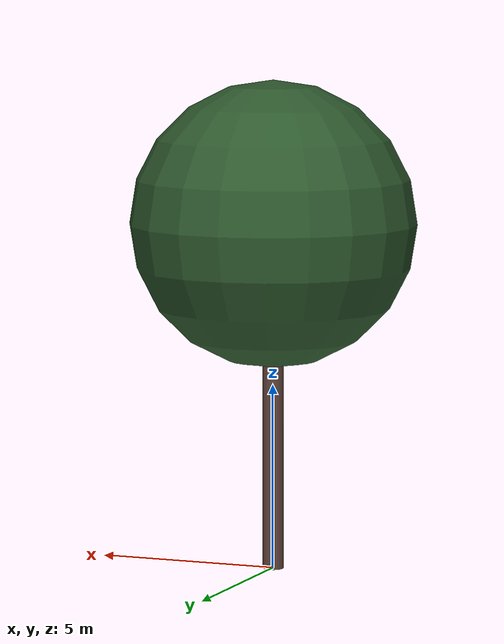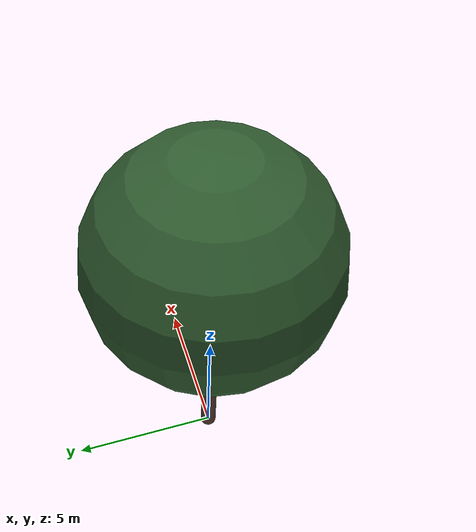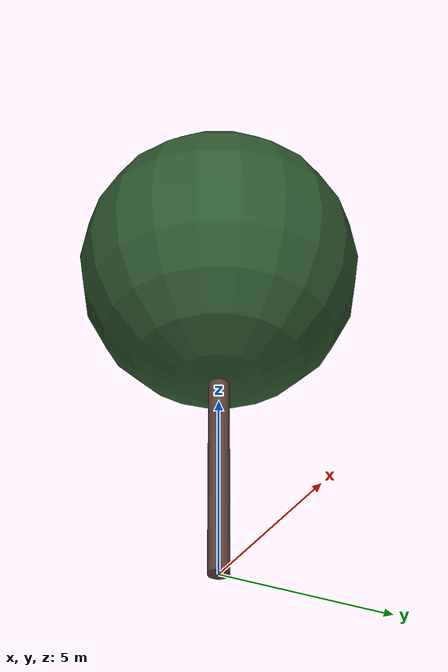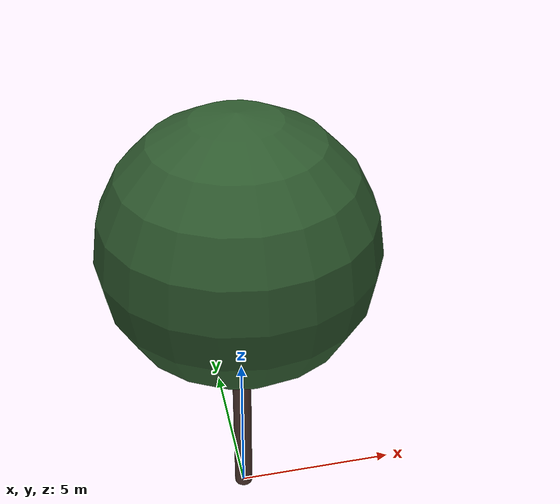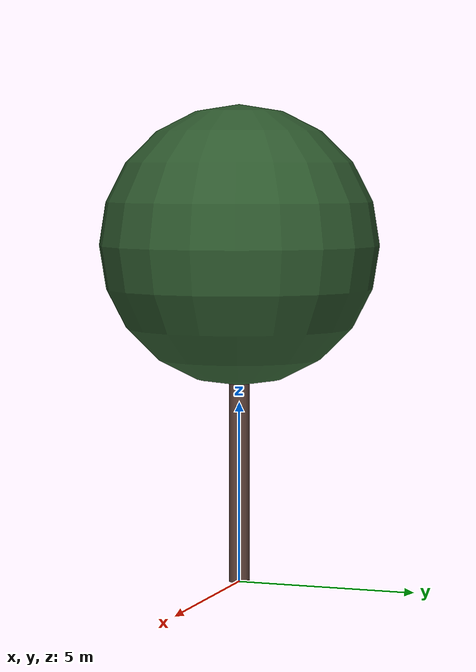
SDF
<?xml version="1.0" ?>
<sdf version="1.10">
  <model name="pin_parasol_11">
    <static>true</static>

    <!-- Tronc -->
    <link name="trunk">
      <pose>0 0 4.090855422657151 0 0 0</pose>
      <visual name="trunk_visual">
        <geometry>
          <cylinder>
            <radius>0.2830149182793491</radius>
            <length>8.181710845314303</length>
          </cylinder>
        </geometry>
        <material>
          <ambient>0.36 0.25 0.22 1</ambient>
          <diffuse>0.36 0.25 0.22 1</diffuse>
          <specular>0.1 0.1 0.1 1</specular>
        </material>
      </visual>
      <collision name="trunk_collision">
        <geometry>
          <cylinder>
            <radius>0.2830149182793491</radius>
            <length>8.181710845314303</length>
          </cylinder>
        </geometry>
      </collision>
    </link>

    <!-- Feuillage -->
    <link name="crown">
      <pose>0 0 9.338632255433408 0 0 0</pose>
      <visual name="crown_visual">
        <geometry>
          <sphere>
              <radius>3.8564047003970185</radius>
            </sphere>
        </geometry>
        <material>
          <ambient>0.18 0.35 0.18 1</ambient>
          <diffuse>0.18 0.35 0.18 1</diffuse>
          <specular>0.1 0.1 0.1 1</specular>
        </material>
      </visual>
      <collision name="crown_collision">
        <geometry>
          <sphere>
            <radius>3.085123760317615</radius>
          </sphere>
        </geometry>
      </collision>
    </link>

    <!-- Joint tronc-feuillage -->
    <joint name="trunk_crown_joint" type="fixed">
      <parent>trunk</parent>
      <child>crown</child>
    </joint>

  </model>
</sdf>
